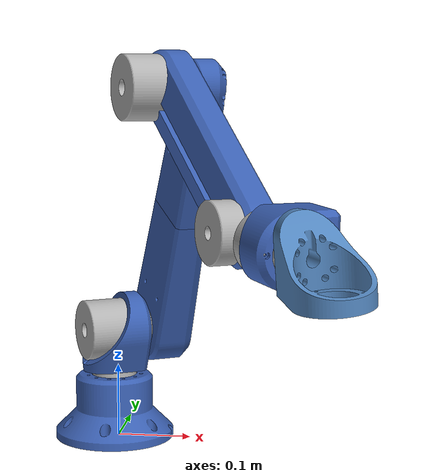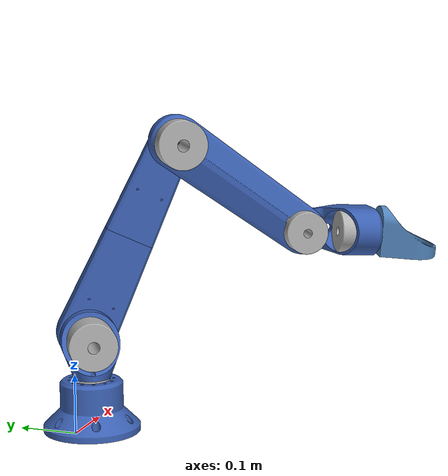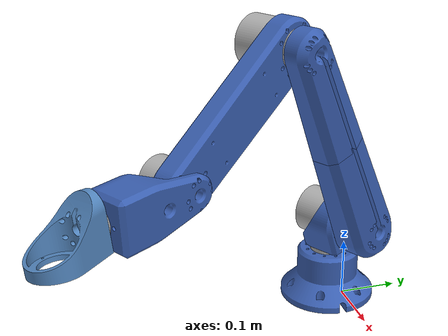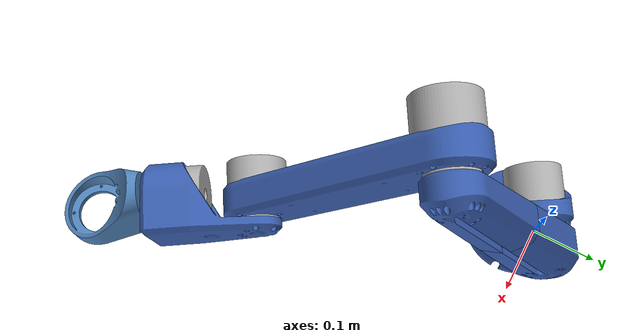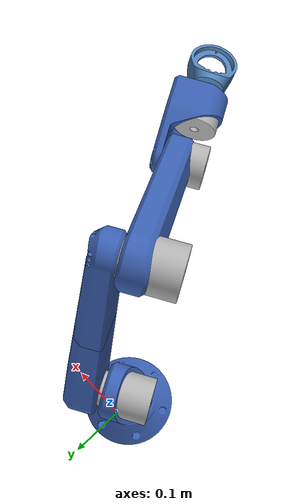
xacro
<?xml version="1.0"?>
<robot xmlns:xacro="http://www.ros.org/wiki/xacro" name="vhit_robotics_rev_1">
    <xacro:arg name="initial_positions_file" default="initial_positions.yaml" />

    <!-- Import vhit_robotics_rev_1 urdf file -->
    <xacro:include filename="$(find vhit_robot_demo)/urdf/vhit_robotics_rev_1.urdf" />

    <!-- Import control_xacro -->
    <xacro:include filename="vhit_robotics_rev_1.ros2_control.xacro" />

    <xacro:vhit_robotics_rev_1_ros2_control name="FakeSystem" initial_positions_file="$(arg initial_positions_file)"/>

</robot>

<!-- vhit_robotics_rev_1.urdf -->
<!-- |    This document was autogenerated by xacro from vhit_robotics_rev_1.urdf.xacro | -->
<!-- |    EDITING THIS FILE BY HAND IS NOT RECOMMENDED                                 | -->
<robot name="vhit_robotics_rev_1">
  <!-- Colors -->
  <material name="blue">
    <color rgba="0.231373 0.380392 0.705882 1"/>
  </material>
  <material name="grey">
    <color rgba="0.701961 0.701961 0.701961 1"/>
  </material>
  <material name="light_blue">
    <color rgba="0.32549 0.529412 0.752941 1"/>
  </material>
  <!-- WORLD FRAME -->
  <link name="world"/>
  <!-- BASE LINK -->
  <link name="base">
    <inertial>
      <origin rpy="0 0 0" xyz="0 0 0"/>
      <mass value="1.0"/>
      <inertia ixx="1.0" ixy="0" ixz="0" iyy="1.0" iyz="0" izz="1.0"/>
    </inertial>
    <!-- Part base -->
    <visual>
      <origin rpy="3.14159 0.0135592 -3.14159" xyz="0 -0.0605 0.03"/>
      <geometry>
        <mesh filename="package://vhit_robot_demo/meshes/base.stl"/>
      </geometry>
      <material name="blue"/>
    </visual>
    <collision>
      <origin rpy="3.14159 0.0135592 -3.14159" xyz="0 -0.0605 0.03"/>
      <geometry>
        <mesh filename="package://vhit_robot_demo/meshes/base.stl"/>
      </geometry>
    </collision>
    <!-- Part elac217_f -->
    <visual>
      <origin rpy="-1.5708 -0.0135592 0" xyz="0 -0.0605 0.03"/>
      <geometry>
        <mesh filename="package://vhit_robot_demo/meshes/elac217_f.stl"/>
      </geometry>
      <material name="grey"/>
    </visual>
    <collision>
      <origin rpy="-1.5708 -0.0135592 0" xyz="0 -0.0605 0.03"/>
      <geometry>
        <mesh filename="package://vhit_robot_demo/meshes/elac217_f.stl"/>
      </geometry>
    </collision>
  </link>
  <!-- SHOULDER LINK -->
  <link name="shoulder">
    <inertial>
      <origin rpy="0 0 0" xyz="0 0 0"/>
      <mass value="0.5"/>
      <inertia ixx="1.0" ixy="0" ixz="0" iyy="1.0" iyz="0" izz="1.0"/>
    </inertial>
    <!-- Part elac217_b -->
    <visual>
      <origin rpy="1.5708 1.5708 0" xyz="0 -0.032 -0.056125"/>
      <geometry>
        <mesh filename="package://vhit_robot_demo/meshes/elac217_b.stl"/>
      </geometry>
      <material name="grey"/>
    </visual>
    <collision>
      <origin rpy="1.5708 1.5708 0" xyz="0 -0.032 -0.056125"/>
      <geometry>
        <mesh filename="package://vhit_robot_demo/meshes/elac217_b.stl"/>
      </geometry>
    </collision>
    <!-- Part shoulder -->
    <visual>
      <origin rpy="-1.5708 -0 -0" xyz="0 -0.032 -0.056125"/>
      <geometry>
        <mesh filename="package://vhit_robot_demo/meshes/shoulder.stl"/>
      </geometry>
      <material name="blue"/>
    </visual>
    <collision>
      <origin rpy="-1.5708 -0 -0" xyz="0 -0.032 -0.056125"/>
      <geometry>
        <mesh filename="package://vhit_robot_demo/meshes/shoulder.stl"/>
      </geometry>
    </collision>
  </link>
  <!-- ARM1 LINK -->
  <link name="arm1">
    <inertial>
      <origin rpy="0 0 0" xyz="0.142779 3.59198e-07 -0.0248996"/>
      <mass value="1.88077"/>
      <inertia ixx="0.00149224" ixy="-1.53387e-07" ixz="-0.000665626" iyy="0.0275846" iyz="2.682e-09" izz="0.0281824"/>
    </inertial>
    <!-- Part arm1 -->
    <visual>
      <origin rpy="-1.5708 0 0" xyz="0.178 0 -0"/>
      <geometry>
        <mesh filename="package://vhit_robot_demo/meshes/arm1.stl"/>
      </geometry>
      <material name="blue"/>
    </visual>
    <collision>
      <origin rpy="-1.5708 0 0" xyz="0.178 0 -0"/>
      <geometry>
        <mesh filename="package://vhit_robot_demo/meshes/arm1.stl"/>
      </geometry>
    </collision>
    <!-- Part arm2 -->
    <visual>
      <origin rpy="-1.5708 -0 3.14159" xyz="0.178 0 -0"/>
      <geometry>
        <mesh filename="package://vhit_robot_demo/meshes/arm2.stl"/>
      </geometry>
      <material name="blue"/>
    </visual>
    <collision>
      <origin rpy="-1.5708 -0 3.14159" xyz="0.178 0 -0"/>
      <geometry>
        <mesh filename="package://vhit_robot_demo/meshes/arm2.stl"/>
      </geometry>
    </collision>
  </link>
  <!-- ELAC217_B LINK -->
  <link name="elac217_b">
    <inertial>
      <origin rpy="0 0 0" xyz="0 0 0"/>
      <mass value="0.3"/>
      <inertia ixx="1.0" ixy="0" ixz="0" iyy="1.0" iyz="0" izz="1.0"/>
    </inertial>
    <!-- Part forearm -->
    <visual>
      <origin rpy="1.5708 -0 0" xyz="0.13 0 -0.0125"/>
      <geometry>
        <mesh filename="package://vhit_robot_demo/meshes/forearm.stl"/>
      </geometry>
      <material name="blue"/>
    </visual>
    <collision>
      <origin rpy="1.5708 -0 0" xyz="0.13 0 -0.0125"/>
      <geometry>
        <mesh filename="package://vhit_robot_demo/meshes/forearm.stl"/>
      </geometry>
    </collision>
    <!-- Part elac214_f -->
    <visual>
      <origin rpy="-0 -0 -1.5708" xyz="0.26 0 -0.0125"/>
      <geometry>
        <mesh filename="package://vhit_robot_demo/meshes/elac214_f.stl"/>
      </geometry>
      <material name="grey"/>
    </visual>
    <collision>
      <origin rpy="-0 -0 -1.5708" xyz="0.26 0 -0.0125"/>
      <geometry>
        <mesh filename="package://vhit_robot_demo/meshes/elac214_f.stl"/>
      </geometry>
    </collision>
    <!-- Part elac217_b_2 -->
    <visual>
      <origin rpy="-0 -0 -0" xyz="-0 -0 -0.0125"/>
      <geometry>
        <mesh filename="package://vhit_robot_demo/meshes/elac217_b.stl"/>
      </geometry>
      <material name="grey"/>
    </visual>
    <collision>
      <origin rpy="-0 -0 -0" xyz="-0 -0 -0.0125"/>
      <geometry>
        <mesh filename="package://vhit_robot_demo/meshes/elac217_b.stl"/>
      </geometry>
    </collision>
  </link>
  <!-- WRIST LINK -->
  <link name="wrist">
    <inertial>
      <origin rpy="0 0 0" xyz="0 0 0"/>
      <mass value="0.2"/>
      <inertia ixx="1.0" ixy="0" ixz="0" iyy="1.0" iyz="0" izz="1.0"/>
    </inertial>
    <!-- Part wrist -->
    <visual>
      <origin rpy="-1.5708 -0 0" xyz="0.13 0 -0"/>
      <geometry>
        <mesh filename="package://vhit_robot_demo/meshes/wrist.stl"/>
      </geometry>
      <material name="blue"/>
    </visual>
    <collision>
      <origin rpy="-1.5708 -0 0" xyz="0.13 0 -0"/>
      <geometry>
        <mesh filename="package://vhit_robot_demo/meshes/wrist.stl"/>
      </geometry>
    </collision>
    <!-- Part elac214_f_2 -->
    <visual>
      <origin rpy="1.5708 -0 1.5708" xyz="0.12 0 0.036125"/>
      <geometry>
        <mesh filename="package://vhit_robot_demo/meshes/elac214_f.stl"/>
      </geometry>
      <material name="grey"/>
    </visual>
    <collision>
      <origin rpy="1.5708 -0 1.5708" xyz="0.12 0 0.036125"/>
      <geometry>
        <mesh filename="package://vhit_robot_demo/meshes/elac214_f.stl"/>
      </geometry>
    </collision>
  </link>
  <!-- FLANGE LINK -->
  <link name="flange">
    <inertial>
      <origin rpy="0 0 0" xyz="0 0 0"/>
      <mass value="0.1"/>
      <inertia ixx="1.0" ixy="0" ixz="0" iyy="1.0" iyz="0" izz="1.0"/>
    </inertial>
    <!-- Part flange -->
    <visual>
      <origin rpy="-1.5708 -0 0" xyz="0 -0.03 -0.065125"/>
      <geometry>
        <mesh filename="package://vhit_robot_demo/meshes/flange.stl"/>
      </geometry>
      <material name="light_blue"/>
    </visual>
    <collision>
      <origin rpy="-1.5708 -0 0" xyz="0 -0.03 -0.065125"/>
      <geometry>
        <mesh filename="package://vhit_robot_demo/meshes/flange.stl"/>
      </geometry>
    </collision>
  </link>
  <!-- JOINTS -->
  <!-- World to base fixed joint -->
  <joint name="world_to_base" type="fixed">
    <parent link="world"/>
    <child link="base"/>
    <origin rpy="1.57 0 0" xyz="0 0 0.15"/>
  </joint>
  <joint name="rotbase" type="revolute">
    <origin rpy="1.5708 -1.03756 0" xyz="-0 -0.048 0.03"/>
    <parent link="base"/>
    <child link="shoulder"/>
    <axis xyz="0 0 1"/>
    <limit effort="10" lower="-3.14159" upper="3.14159" velocity="10"/>
  </joint>
  <joint name="shoulder_joint" type="revolute">
    <origin rpy="-1.5708 1.13806 0" xyz="0 -0.0445 -0.056125"/>
    <parent link="shoulder"/>
    <child link="arm1"/>
    <axis xyz="0 0 1"/>
    <limit effort="10" lower="-3.14159" upper="3.14159" velocity="10"/>
  </joint>
  <joint name="elbow" type="revolute">
    <origin rpy="-3.14159 -0 -1.75984" xyz="0.356 -0 -0"/>
    <parent link="arm1"/>
    <child link="elac217_b"/>
    <axis xyz="0 0 1"/>
    <limit effort="10" lower="-3.14159" upper="3.14159" velocity="10"/>
  </joint>
  <joint name="wrist_pitch" type="revolute">
    <origin rpy="-3.14159 -0 -0.569007" xyz="0.26 0 -0.0005"/>
    <parent link="elac217_b"/>
    <child link="wrist"/>
    <axis xyz="0 0 1"/>
    <limit effort="10" lower="-3.14159" upper="3.14159" velocity="10"/>
  </joint>
  <joint name="wrist_roll" type="revolute">
    <origin rpy="1.5708 -1.45886 -1.5708" xyz="0.132 0 0.036125"/>
    <parent link="wrist"/>
    <child link="flange"/>
    <axis xyz="0 0 1"/>
    <limit effort="10" lower="-3.14159" upper="3.14159" velocity="10"/>
  </joint>
  <gazebo>
    <plugin filename="libgz_ros2_control-system.so" name="gz_ros2_control::GazeboSimROS2ControlPlugin">
      <parameters>
        /home/riky/vhit-robot-demo/install/vhit_robot_demo/share/vhit_robot_demo/config/vhit_robotics_rev_1_controllers.yaml
      </parameters>
    </plugin>
  </gazebo>
  <ros2_control name="robot_system" type="system">
    <hardware>
      <plugin>gz_ros2_control/GazeboSimSystem</plugin>
    </hardware>
    <joint name="rotbase">
      <command_interface name="position">
        <param name="min">-3.14159</param>
        <param name="max">3.14159</param>
      </command_interface>
      <state_interface name="position"/>
    </joint>
    <joint name="shoulder_joint">
      <command_interface name="position">
        <param name="min">-3.14159</param>
        <param name="max">3.14159</param>
      </command_interface>
      <state_interface name="position"/>
    </joint>
    <joint name="elbow">
      <command_interface name="position">
        <param name="min">-3.14159</param>
        <param name="max">3.14159</param>
      </command_interface>
      <state_interface name="position"/>
    </joint>
    <joint name="wrist_pitch">
      <command_interface name="position">
        <param name="min">-3.14159</param>
        <param name="max">3.14159</param>
      </command_interface>
      <state_interface name="position"/>
    </joint>
    <joint name="wrist_roll">
      <command_interface name="position">
        <param name="min">-3.14159</param>
        <param name="max">3.14159</param>
      </command_interface>
      <state_interface name="position"/>
    </joint>
  </ros2_control>
</robot>
